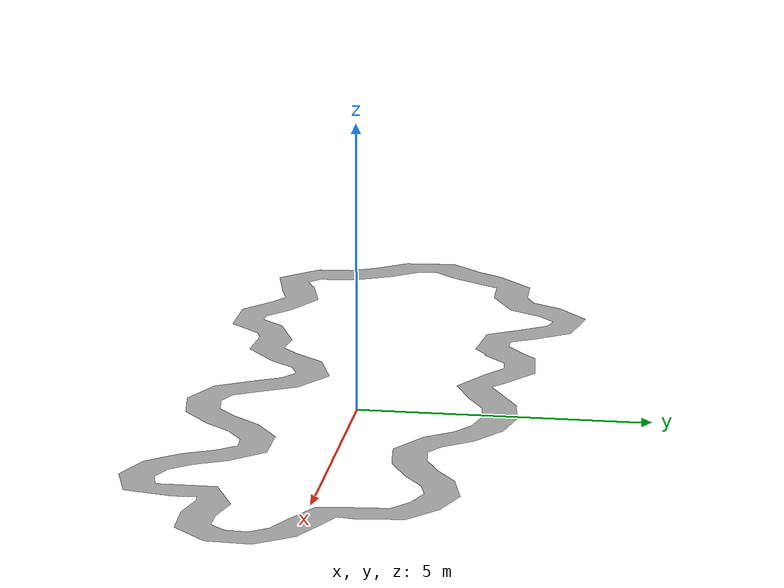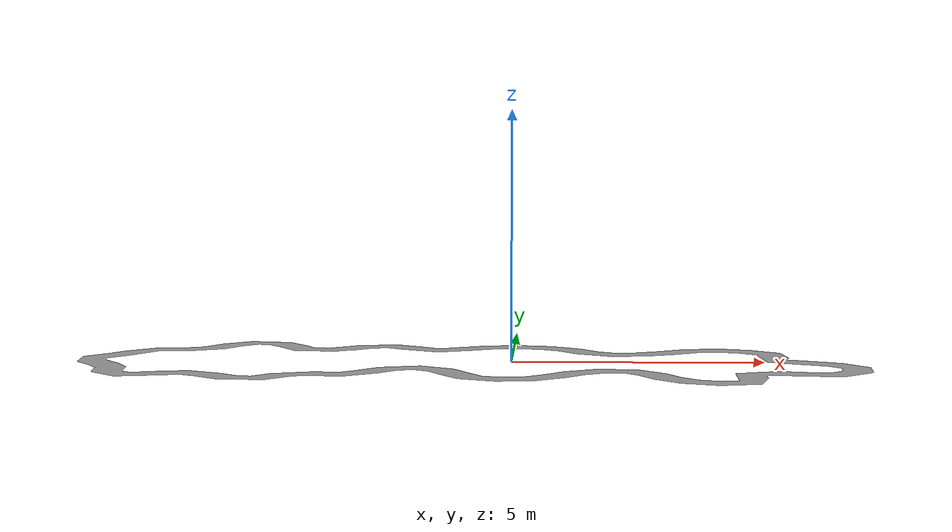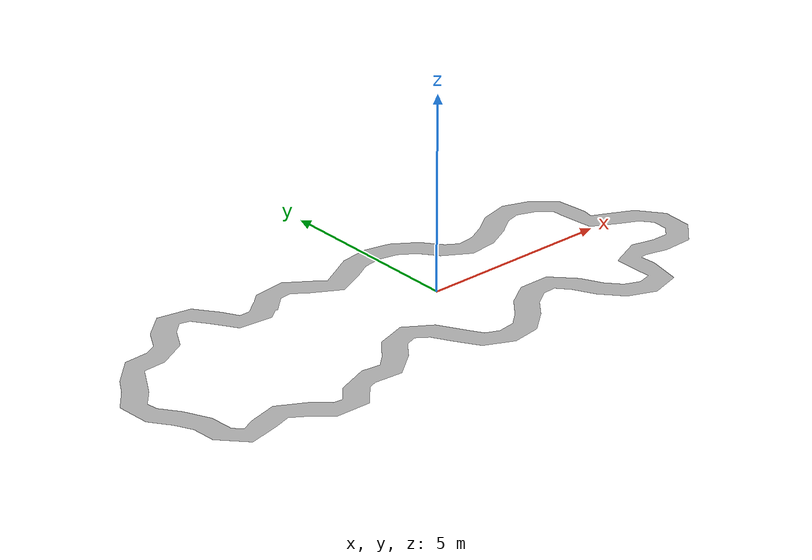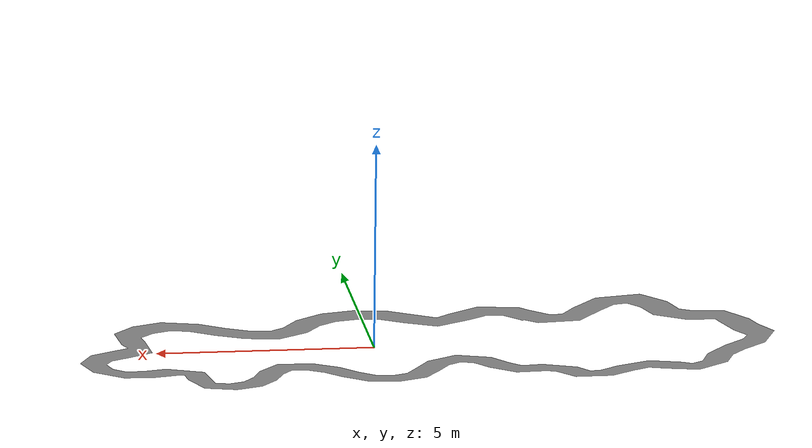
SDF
<?xml version='1.0'?>
<sdf version='1.6'>
  <model name="dirt_path_curves">
	<static>true</static>
	<link name='path'>
		<collision name='collision'>
			<geometry>
				<mesh>
					<uri>model://dirt_path_curves/dirt_path_curves.dae</uri>
				</mesh>
			</geometry>
		</collision>

		<visual name='visual'>
			<cast_shadows>false</cast_shadows>
			<geometry>
				<mesh>
					<uri>model://dirt_path_curves/dirt_path_curves.dae</uri>
				</mesh>
			</geometry>
		</visual>
	</link>
  </model>
</sdf>
